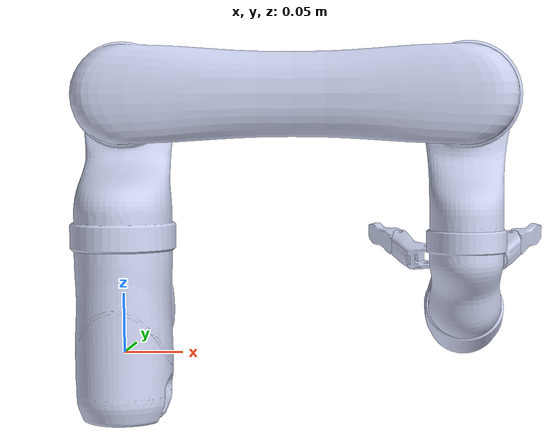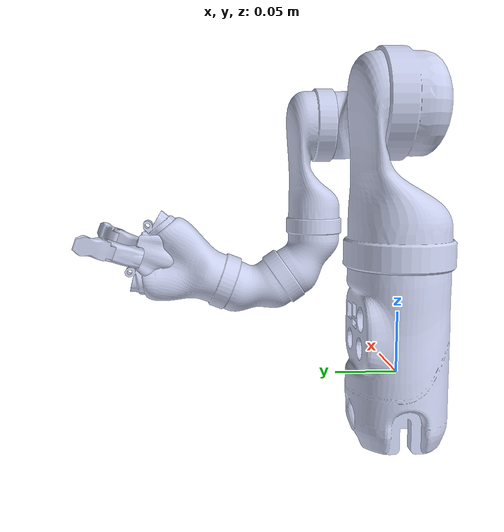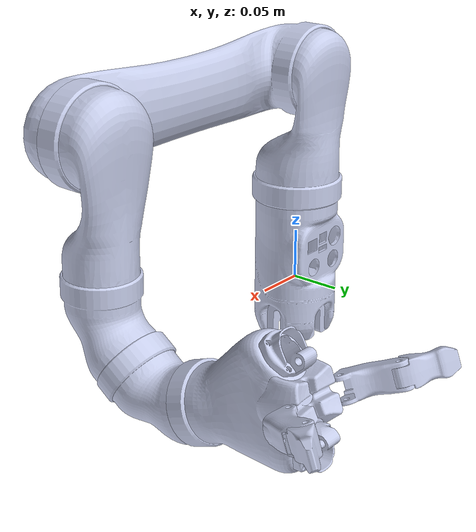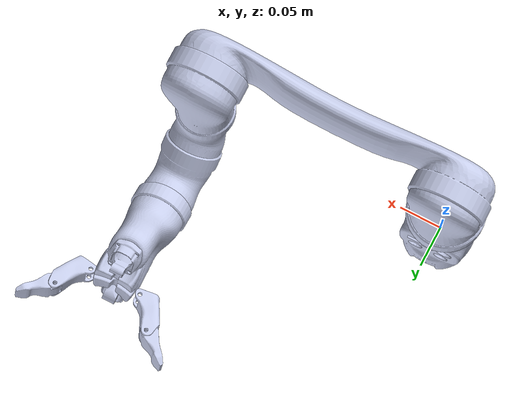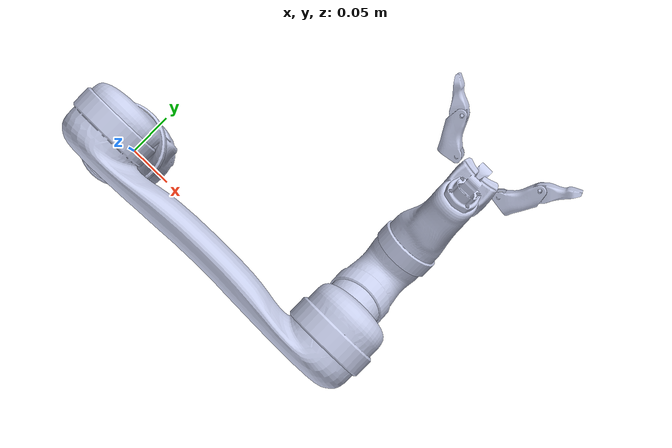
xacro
<?xml version="1.0"?>

<robot xmlns:xi="http://www.w3.org/2001/XInclude"
	xmlns:gazebo="http://playerstage.sourceforge.net/gazebo/xmlschema/#gz"
    xmlns:model="http://playerstage.sourceforge.net/gazebo/xmlschema/#model"
	xmlns:sensor="http://playerstage.sourceforge.net/gazebo/xmlschema/#sensor"
	xmlns:body="http://playerstage.sourceforge.net/gazebo/xmlschema/#body"
    xmlns:geom="http://playerstage.sourceforge.net/gazebo/xmlschema/#geom"
    xmlns:joint="http://playerstage.sourceforge.net/gazebo/xmlschema/#joint"
	xmlns:controller="http://playerstage.sourceforge.net/gazebo/xmlschema/#controller"
	xmlns:interface="http://playerstage.sourceforge.net/gazebo/xmlschema/#interface"
	xmlns:rendering="http://playerstage.sourceforge.net/gazebo/xmlschema/#rendering"
    xmlns:renderable="http://playerstage.sourceforge.net/gazebo/xmlschema/#renderable"
    xmlns:physics="http://playerstage.sourceforge.net/gazebo/xmlschema/#physics"
	xmlns:xacro="http://ros.org/wiki/xacro" name="mico">

  <xacro:include filename="$(find jaco_model)/urdf/mico_arm.xacro" />

<link name="root">
      <visual>
	<origin xyz="0 0 0" rpy="0 0 0" />
	<geometry>
	  <box size = "0 0 0"/> <!--making it slightly bigger in x and z direction-->
	</geometry>
      </visual>
      <collision>
	<origin xyz="0 0 0" rpy="0 0 0" />
	<geometry>
	  <box size = "0 0 0"/> <!--making it slightly bigger in x and z direction-->
	</geometry>
      </collision>
    </link>

<xacro:jaco_arm  parent="root"/>

</robot>

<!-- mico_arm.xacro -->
<root xmlns:xi="http://www.w3.org/2001/XInclude"
	xmlns:gazebo="http://playerstage.sourceforge.net/gazebo/xmlschema/#gz"
    xmlns:model="http://playerstage.sourceforge.net/gazebo/xmlschema/#model"
	xmlns:sensor="http://playerstage.sourceforge.net/gazebo/xmlschema/#sensor"
	xmlns:body="http://playerstage.sourceforge.net/gazebo/xmlschema/#body"
    xmlns:geom="http://playerstage.sourceforge.net/gazebo/xmlschema/#geom"
    xmlns:joint="http://playerstage.sourceforge.net/gazebo/xmlschema/#joint"
	xmlns:controller="http://playerstage.sourceforge.net/gazebo/xmlschema/#controller"
	xmlns:interface="http://playerstage.sourceforge.net/gazebo/xmlschema/#interface"
	xmlns:rendering="http://playerstage.sourceforge.net/gazebo/xmlschema/#rendering"
    xmlns:renderable="http://playerstage.sourceforge.net/gazebo/xmlschema/#renderable"
    xmlns:physics="http://playerstage.sourceforge.net/gazebo/xmlschema/#physics"
	xmlns:xacro="http://ros.org/wiki/xacro">

  <property name="robot_prefix" value="mico_"/>
  <property name="J_PI" value="3.1415926535897932" />
  <property name="J_LIM" value="${2*J_PI}" />
  <property name="link_base" value="${robot_prefix}link_base" />
  <property name="link_1" value="${robot_prefix}link_1" />
  <property name="link_2" value="${robot_prefix}link_2" />
  <property name="link_3" value="${robot_prefix}link_3" />
  <property name="link_4" value="${robot_prefix}link_4" />
  <property name="link_5" value="${robot_prefix}link_5" />
  <property name="link_hand" value="${robot_prefix}link_hand" />
  <property name="link_finger_1" value="${robot_prefix}link_finger_1" />
  <property name="link_finger_2" value="${robot_prefix}link_finger_2" />
  <property name="link_finger_1_distal" value="${robot_prefix}link_finger_1_distal" />
  <property name="link_finger_2_distal" value="${robot_prefix}link_finger_2_distal" />

  <property name="joint_base" value="${robot_prefix}joint_base" />
  <property name="joint_base_axis_xyz" value="0 0 0" />
  <property name="joint_base_origin_xyz" value="0 0 0" />
  <property name="joint_base_origin_rpy" value="0 0 0" />

  <property name="joint_1" value="${robot_prefix}joint_1" />
  <property name="joint_1_axis_xyz" value="0 0 -1" />
  <property name="joint_1_origin_xyz" value="0 0 0.09425" />
  <property name="joint_1_origin_rpy" value="${J_PI} 0 ${J_PI}" />
  <property name="joint_1_lower_limit" value="-${J_LIM}"/>
  <property name="joint_1_upper_limit" value="${J_LIM}" />

  <property name="joint_2" value="${robot_prefix}joint_2" />
  <property name="joint_2_axis_xyz" value="0 0 1" />

  <property name="joint_2_origin_xyz" value="0 0.00625 -0.12325" />
  <property name="joint_2_origin_rpy" value="-${J_PI/2} ${J_PI} 0" />
  <property name="joint_2_lower_limit" value="${J_PI*-228/180}" />
  <property name="joint_2_upper_limit" value="${J_PI*48/180}" />

  <property name="joint_3" value="${robot_prefix}joint_3" />
  <property name="joint_3_axis_xyz" value="0 0 -1" />
  <property name="joint_3_origin_xyz" value="0.29 0 0" />
  <property name="joint_3_origin_rpy" value="${J_PI} 0 ${J_PI/2}" />
  <property name="joint_3_lower_limit" value="-${J_PI*253/180}" />
  <property name="joint_3_upper_limit" value="${J_PI*73/180}" />

  <property name="joint_4" value="${robot_prefix}joint_4" />
  <property name="joint_4_axis_xyz" value="0 0 -1" />
  <property name="joint_4_origin_xyz" value="0.127 0 -0.01325" />
  <property name="joint_4_origin_rpy" value="${J_PI} ${J_PI/2} 0" />
  <property name="joint_4_lower_limit" value="-${J_LIM}" />
  <property name="joint_4_upper_limit" value="${J_LIM}" />

  <property name="joint_5" value="${robot_prefix}joint_5" />
  <property name="joint_5_axis_xyz" value="0 0 -1" />
  <property name="joint_5_origin_xyz" value="0.040276 0 -0.062261" />
  <property name="joint_5_origin_rpy" value="0 -${J_PI/180*55} 0" />
  <property name="joint_5_lower_limit" value="-${J_LIM}" />
  <property name="joint_5_upper_limit" value="${J_LIM}" />

  <property name="joint_6" value="${robot_prefix}joint_6" />
  <property name="joint_6_axis_xyz" value="0 0 -1" />
  <property name="joint_6_origin_xyz" value="0.040276 0 -0.062261" />
  <property name="joint_6_origin_rpy" value="-${J_PI/180*55} 0 ${J_PI/2}" />
  <property name="joint_6_lower_limit" value="-${J_LIM}" />
  <property name="joint_6_upper_limit" value="${J_LIM}" />

  <property name="joint_finger_1" value="${robot_prefix}joint_finger_1" />
  <property name="joint_finger_1_axis_xyz" value="0 0 1" />
  <property name="joint_finger_1_origin_xyz" value="0.030948 0.013746 -0.11107 " />
  <property name="joint_finger_1_origin_rpy" value="-1.5708 0 0" />
  <property name="joint_finger_1_lower_limit" value="0" />
  <property name="joint_finger_1_upper_limit" value="${J_PI/180*40}" />

  <property name="joint_finger_2" value="${robot_prefix}joint_finger_2" />
  <property name="joint_finger_2_axis_xyz" value="0 0 1" />
  <property name="joint_finger_2_origin_xyz" value="-0.030948 0.013746 -0.11107 " />
  <property name="joint_finger_2_origin_rpy" value="1.5708 0 0" />
  <property name="joint_finger_2_lower_limit" value="0" />
  <property name="joint_finger_2_upper_limit" value="${J_PI/180*40}" />

  <property name="joint_finger_1_distal" value="${robot_prefix}joint_finger_1_distal" />
  <property name="joint_finger_1_distal_axis_xyz" value="0 0 1" />
  <property name="joint_finger_1_distal_origin_xyz" value="0.026055 0.035582 0" />
  <property name="joint_finger_1_distal_origin_rpy" value="0 0 0" />
  <property name="joint_finger_1_distal_lower_limit" value="0" />
  <property name="joint_finger_1_distal_upper_limit" value="${J_PI/180*40}" />

  <property name="joint_finger_2_distal" value="${robot_prefix}joint_finger_2_distal" />
  <property name="joint_finger_2_distal_axis_xyz" value="0 0 1" />
  <property name="joint_finger_2_distal_origin_xyz" value="-0.026055 -0.035582 0" />
  <property name="joint_finger_2_distal_origin_rpy" value="0 0 0" />
  <property name="joint_finger_2_distal_lower_limit" value="0" />
  <property name="joint_finger_2_distal_upper_limit" value="${J_PI/180*40}" />

<xacro:macro name="jaco_link" params="link_name">
<link name="${link_name}">
      <visual>
                 <geometry>
                         <mesh
          filename="package://jaco_model/meshes/${link_name}.dae"/>
                </geometry>
                <material name="carbon_fiber">
 			<color rgba="0.792156862745098 0.819607843137255 0.933333333333333 1" />
                </material>
        </visual>
        <collision>
                <geometry>
                         <mesh
          filename="package://jaco_model/meshes/${link_name}_collision.dae"/>
                </geometry>
        </collision>
</link>
</xacro:macro>

<xacro:macro name="jaco_fixed_joint" params="joint_name type parent child joint_axis_xyz joint_origin_xyz joint_origin_rpy">
<joint name="${joint_name}" type="${type}">
  <parent link="${parent}"/>
    <child link="${child}"/>
    <axis xyz="${joint_axis_xyz}"/>
    <origin xyz="${joint_origin_xyz}" rpy="${joint_origin_rpy}"/>
 </joint>
</xacro:macro>

<xacro:macro name="jaco_joint" params="joint_name type parent child joint_axis_xyz joint_origin_xyz joint_origin_rpy lower_limit upper_limit">
<joint name="${joint_name}" type="${type}">
    <parent link="${parent}"/>
    <child link="${child}"/>
    <axis xyz="${joint_axis_xyz}"/>
<origin xyz="${joint_origin_xyz}" rpy="${joint_origin_rpy}"/>
    <limit lower="${lower_limit}" upper="${upper_limit}" effort="30" velocity="5"/>
 </joint>
</xacro:macro>

<xacro:macro name="jaco_finger_joint" params="joint_name type parent child joint_axis_xyz joint_origin_xyz joint_origin_rpy lower_limit upper_limit">
<joint name="${joint_name}" type="${type}">
    <parent link="${parent}"/>
    <child link="${child}"/>
    <axis xyz="${joint_axis_xyz}"/>
<origin xyz="${joint_origin_xyz}" rpy="${joint_origin_rpy}"/>
    <limit lower="${lower_limit}" upper="${upper_limit}" effort="30" velocity="5"/>
 </joint>
</xacro:macro>

<xacro:macro name="jaco_arm" params="parent">
   <xacro:jaco_link link_name="${link_base}"/>
   <xacro:jaco_fixed_joint joint_name="${joint_base}" type="fixed" parent="${parent}" child="${link_base}" joint_axis_xyz="${joint_base_axis_xyz}" joint_origin_xyz="${joint_base_origin_xyz}" joint_origin_rpy="${joint_base_origin_rpy}"/>
   <xacro:jaco_link link_name="${link_1}"/>
   <xacro:jaco_joint joint_name="${joint_1}" type="revolute" parent="${link_base}" child="${link_1}" joint_axis_xyz="${joint_1_axis_xyz}" joint_origin_xyz="${joint_1_origin_xyz}" joint_origin_rpy="${joint_1_origin_rpy}" lower_limit="${joint_1_lower_limit}" upper_limit="${joint_1_upper_limit}"/>
   <xacro:jaco_link link_name="${link_2}"/>
   <xacro:jaco_joint joint_name="${joint_2}" type="revolute" parent="${link_1}" child="${link_2}" joint_axis_xyz="${joint_2_axis_xyz}" joint_origin_xyz="${joint_2_origin_xyz}" joint_origin_rpy="${joint_2_origin_rpy}" lower_limit="${joint_2_lower_limit}" upper_limit="${joint_2_upper_limit}"/>
   <xacro:jaco_link link_name="${link_3}"/>
   <xacro:jaco_joint joint_name="${joint_3}" type="revolute" parent="${link_2}" child="${link_3}" joint_axis_xyz="${joint_3_axis_xyz}" joint_origin_xyz="${joint_3_origin_xyz}" joint_origin_rpy="${joint_3_origin_rpy}"  lower_limit="${joint_3_lower_limit}" upper_limit="${joint_3_upper_limit}"/>
   <xacro:jaco_link link_name="${link_4}"/>
   <xacro:jaco_joint joint_name="${joint_4}" type="revolute" parent="${link_3}" child="${link_4}" joint_axis_xyz="${joint_4_axis_xyz}" joint_origin_xyz="${joint_4_origin_xyz}" joint_origin_rpy="${joint_4_origin_rpy}"  lower_limit="${joint_4_lower_limit}" upper_limit="${joint_4_upper_limit}"/>
   <xacro:jaco_link link_name="${link_5}"/>
   <xacro:jaco_joint joint_name="${joint_5}" type="revolute" parent="${link_4}" child="${link_5}" joint_axis_xyz="${joint_5_axis_xyz}" joint_origin_xyz="${joint_5_origin_xyz}" joint_origin_rpy="${joint_5_origin_rpy}" lower_limit="${joint_5_lower_limit}" upper_limit="${joint_5_upper_limit}"/>
   <xacro:jaco_link link_name="${link_hand}"/>
   <xacro:jaco_joint joint_name="${joint_6}" type="revolute" parent="${link_5}" child="${link_hand}" joint_axis_xyz="${joint_6_axis_xyz}" joint_origin_xyz="${joint_6_origin_xyz}" joint_origin_rpy="${joint_6_origin_rpy}" lower_limit="${joint_6_lower_limit}" upper_limit="${joint_6_upper_limit}"/>

   <xacro:jaco_link link_name="${link_finger_1}"/>
   <xacro:jaco_finger_joint joint_name="${joint_finger_1}" type="revolute" parent="${link_hand}" child="${link_finger_1}" joint_axis_xyz="${joint_finger_1_axis_xyz}" joint_origin_xyz="${joint_finger_1_origin_xyz}" joint_origin_rpy="${joint_finger_1_origin_rpy}" lower_limit="${joint_finger_1_lower_limit}" upper_limit="${joint_finger_1_upper_limit}"/>

   <xacro:jaco_link link_name="${link_finger_2}"/>
   <xacro:jaco_finger_joint joint_name="${joint_finger_2}" type="revolute" parent="${link_hand}" child="${link_finger_2}" joint_axis_xyz="${joint_finger_2_axis_xyz}" joint_origin_xyz="${joint_finger_2_origin_xyz}" joint_origin_rpy="${joint_finger_2_origin_rpy}" lower_limit="${joint_finger_2_lower_limit}" upper_limit="${joint_finger_2_upper_limit}"/>

   <xacro:jaco_link link_name="${link_finger_1_distal}"/>
   <xacro:jaco_finger_joint joint_name="${joint_finger_1_distal}" type="revolute" parent="${link_finger_1}" child="${link_finger_1_distal}" joint_axis_xyz="${joint_finger_1_distal_axis_xyz}" joint_origin_xyz="${joint_finger_1_distal_origin_xyz}" joint_origin_rpy="${joint_finger_1_distal_origin_rpy}" lower_limit="${joint_finger_1_distal_lower_limit}" upper_limit="${joint_finger_1_distal_upper_limit}"/>

   <xacro:jaco_link link_name="${link_finger_2_distal}"/>
   <xacro:jaco_finger_joint joint_name="${joint_finger_2_distal}" type="revolute" parent="${link_finger_2}" child="${link_finger_2_distal}" joint_axis_xyz="${joint_finger_2_distal_axis_xyz}" joint_origin_xyz="${joint_finger_2_distal_origin_xyz}" joint_origin_rpy="${joint_finger_2_distal_origin_rpy}" lower_limit="${joint_finger_2_distal_lower_limit}" upper_limit="${joint_finger_2_distal_upper_limit}"/>

</xacro:macro>

</root>
